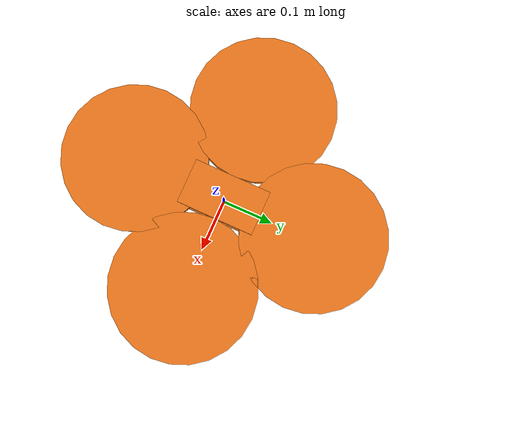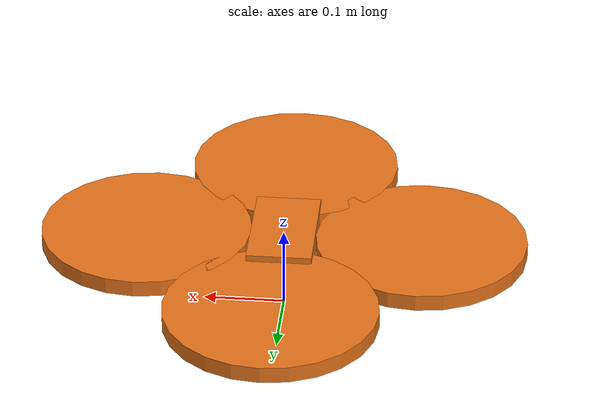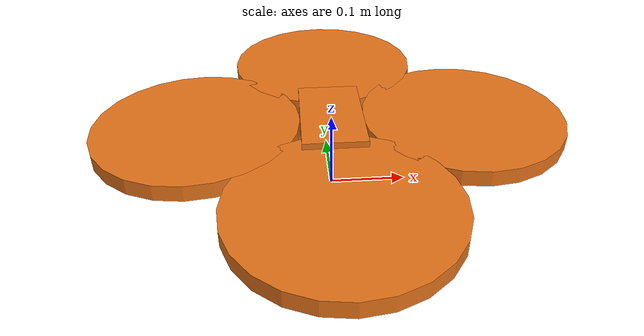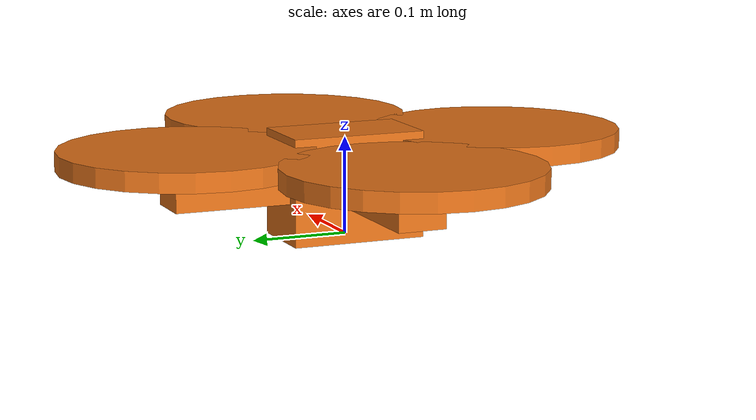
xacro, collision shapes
<?xml version="1.0"?>
<robot xmlns:xacro="http://www.ros.org/wiki/xacro" name="drone">

  <xacro:arg name="name" default="drone"/>
  <xacro:arg name="gps_update_rate" default="5.0"/>
  <xacro:arg name="gps_ref_lat"     default="49.0"/>
  <xacro:arg name="gps_ref_lon"     default="9.0"/>
  <xacro:arg name="gps_ref_alt"     default="300.0"/>
  <xacro:arg name="gps_noise_std"   default="0.5"/>
  <xacro:property name="prefix" value="$(arg name)"/>
  <xacro:property name="color" value="0.9 0.45 0.1 1.0"/>

  <link name="${prefix}">
    <inertial>
      <mass value="1.0"/>
      <inertia ixx="${3e-3}" iyy="${3e-3}" izz="${6e-3}" ixy="0" ixz="0" iyz="0"/>
    </inertial>
    <visual>
      <origin xyz="-0.198844 -0.294427 0"/>
      <geometry>
        <mesh filename="package://uav_gazebo/urdf/drone.stl" scale="0.001 0.001 0.001"/>
      </geometry>
      <material name="orange">
         <color rgba="${color}"/>
     </material>
    </visual>
    <collision>
      <origin xyz="0 0 0.053"/>
      <geometry>
        <box size="0.08 0.14 0.11"/>
      </geometry>
    </collision>
    <collision>
      <origin xyz="0.17 0 0.09"/>
      <geometry>
        <cylinder length="0.02" radius="0.13"/>
      </geometry>
    </collision>
    <collision>
      <origin xyz="-0.17 0 0.09"/>
      <geometry>
        <cylinder length="0.02" radius="0.13"/>
      </geometry>
    </collision>
    <collision>
      <origin xyz="0 0.17 0.09"/>
      <geometry>
        <cylinder length="0.02" radius="0.13"/>
      </geometry>
    </collision>
    <collision>
      <origin xyz="0 -0.17 0.09"/>
      <geometry>
        <cylinder length="0.02" radius="0.13"/>
      </geometry>
    </collision>
    <collision>
      <origin xyz="0.0 0 0.06"/>
      <geometry>
        <box size="0.38 0.05 0.04"/>
      </geometry>
    </collision>
    <collision>
      <origin xyz="0.0 0 0.06"/>
      <geometry>
        <box size="0.05 0.38 0.04"/>
      </geometry>
    </collision>
  </link>

  <gazebo reference="${prefix}">
    <visual>
      <material>
        <ambient>${color}</ambient>
        <diffuse>${color}</diffuse>
        <specular>0.1 0.1 0.1 1</specular>
        <emissive>0 0 0 0</emissive>
      </material>
    </visual>
  </gazebo>

  <!-- Core UAV dynamics plugin -->
  <gazebo>
    <plugin name="${prefix}_plugin" filename="libuav_gazebo_plugin.so">
      <rosNamespace>${prefix}</rosNamespace>
		</plugin>
  </gazebo>

  <!-- GPS sensor plugin -->
  <gazebo>
    <plugin name="${prefix}_gps_plugin" filename="libuav_gazebo_gps_plugin.so">
      <!-- namespace for ROS topics -->
      <rosNamespace>${prefix}</rosNamespace>

      <!-- how often to publish (Hz) -->
      <updateRate>$(arg gps_update_rate)</updateRate>

      <!-- ENU origin in WGS84 -->
      <referenceLatitude>$(arg gps_ref_lat)</referenceLatitude>
      <referenceLongitude>$(arg gps_ref_lon)</referenceLongitude>
      <referenceAltitude>$(arg gps_ref_alt)</referenceAltitude>

      <!-- Gaussian noise σ (deg for lat/lon, m for alt) -->
      <noiseStdDev>$(arg gps_noise_std)</noiseStdDev>

      <!-- tf frame and topic name -->
      <frameId>gps_link</frameId>
      <topicName>/${prefix}/gps</topicName>
    </plugin>
  </gazebo>

</robot>
